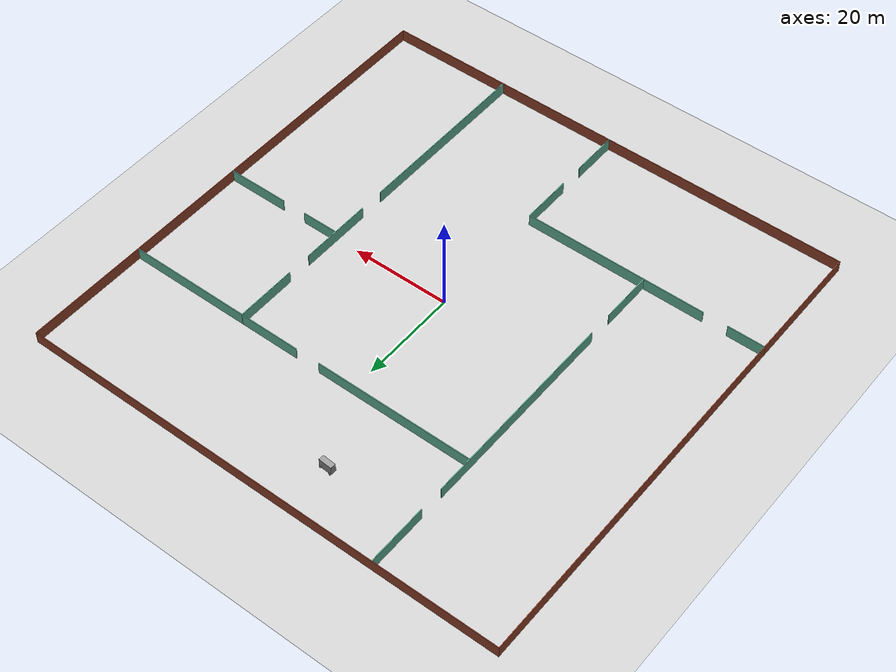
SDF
<sdf version="1.6">
 <world name="default">
  <model name="ground_plane">
   <static>1</static>
   <link name="link">
    <collision name="collision">
     <geometry><plane><normal>0 0 1</normal><size>100 100</size></plane></geometry>
     <surface><friction><ode><mu>100</mu><mu2>50</mu2></ode></friction></surface>
    </collision>
    <visual name="visual">
     <cast_shadows>0</cast_shadows>
     <geometry><plane><normal>0 0 1</normal><size>100 100</size></plane></geometry>
     <material>
      <script><uri>file://media/materials/scripts/gazebo.material</uri><name>Gazebo/Grey</name></script>
     </material>
    </visual>
   </link>
  </model>
  <model name="nuro_building">
   <pose>-0.566987 0.567026 0 0 -0 0</pose>
   <link name="Wall_0">
    <collision name="Wall_0_Collision">
     <geometry><box><size>100.15 0.15 2.5</size></box></geometry>
     <pose>0 0 1.25 0 -0 0</pose>
    </collision>
    <visual name="Wall_0_Visual">
     <pose>0 0 1.25 0 -0 0</pose>
     <geometry><box><size>100.15 0.15 2.5</size></box></geometry>
     <material>
      <script><uri>file://media/materials/scripts/gazebo.material</uri><name>Gazebo/Bricks</name></script>
      <ambient>1 1 1 1</ambient>
     </material>
     <meta><layer>0</layer></meta>
    </visual>
    <pose>-50 -2e-06 0 0 -0 1.5708</pose>
   </link>
   <link name="Wall_10">
    <pose>-25 12.5 0 0 -0 1.5708</pose>
    <visual name="Wall_10_Visual_0">
     <pose>-32.175 0 1.25 0 -0 0</pose>
     <geometry><box><size>10.8 0.15 2.5</size></box></geometry>
     <material>
      <script><uri>file://media/materials/scripts/gazebo.material</uri><name>Gazebo/Grey</name></script>
      <ambient>0.435294 0.796078 0.67451 1</ambient>
     </material>
     <meta><layer>0</layer></meta>
    </visual>
    <collision name="Wall_10_Collision_0">
     <geometry><box><size>10.8 0.15 2.5</size></box></geometry>
     <pose>-32.175 0 1.25 0 -0 0</pose>
    </collision>
    <visual name="Wall_10_Visual_1">
     <pose>-0.887501 0 1.25 0 -0 0</pose>
     <geometry><box><size>41.775 0.15 2.5</size></box></geometry>
     <material>
      <script><uri>file://media/materials/scripts/gazebo.material</uri><name>Gazebo/Grey</name></script>
      <ambient>0.435294 0.796078 0.67451 1</ambient>
     </material>
     <meta><layer>0</layer></meta>
    </visual>
    <collision name="Wall_10_Collision_1">
     <geometry><box><size>41.775 0.15 2.5</size></box></geometry>
     <pose>-0.887501 0 1.25 0 -0 0</pose>
    </collision>
    <visual name="Wall_10_Visual_2">
     <pose>31.2875 0 1.25 0 -0 0</pose>
     <geometry><box><size>12.575 0.15 2.5</size></box></geometry>
     <material>
      <script><uri>file://media/materials/scripts/gazebo.material</uri><name>Gazebo/Grey</name></script>
      <ambient>0.435294 0.796078 0.67451 1</ambient>
     </material>
     <meta><layer>0</layer></meta>
    </visual>
    <collision name="Wall_10_Collision_2">
     <geometry><box><size>12.575 0.15 2.5</size></box></geometry>
     <pose>31.2875 0 1.25 0 -0 0</pose>
    </collision>
   </link>
   <link name="Wall_12">
    <pose>12.5 25 0 0 -0 0</pose>
    <visual name="Wall_12_Visual_0">
     <pose>-21.2875 0 1.25 0 -0 0</pose>
     <geometry><box><size>32.575 0.15 2.5</size></box></geometry>
     <material>
      <script><uri>file://media/materials/scripts/gazebo.material</uri><name>Gazebo/Grey</name></script>
      <ambient>0.435294 0.796078 0.67451 1</ambient>
     </material>
     <meta><layer>0</layer></meta>
    </visual>
    <collision name="Wall_12_Collision_0">
     <geometry><box><size>32.575 0.15 2.5</size></box></geometry>
     <pose>-21.2875 0 1.25 0 -0 0</pose>
    </collision>
    <visual name="Wall_12_Visual_1">
     <pose>18.7875 0 1.25 0 -0 0</pose>
     <geometry><box><size>37.575 0.15 2.5</size></box></geometry>
     <material>
      <script><uri>file://media/materials/scripts/gazebo.material</uri><name>Gazebo/Grey</name></script>
      <ambient>0.435294 0.796078 0.67451 1</ambient>
     </material>
     <meta><layer>0</layer></meta>
    </visual>
    <collision name="Wall_12_Collision_1">
     <geometry><box><size>37.575 0.15 2.5</size></box></geometry>
     <pose>18.7875 0 1.25 0 -0 0</pose>
    </collision>
   </link>
   <link name="Wall_14">
    <pose>37.5 -2e-06 0 0 -0 0</pose>
    <visual name="Wall_14_Visual_0">
     <pose>-8.7875 0 1.25 0 -0 0</pose>
     <geometry><box><size>7.575 0.15 2.5</size></box></geometry>
     <material>
      <script><uri>file://media/materials/scripts/gazebo.material</uri><name>Gazebo/Grey</name></script>
      <ambient>0.435294 0.796078 0.67451 1</ambient>
     </material>
     <meta><layer>0</layer></meta>
    </visual>
    <collision name="Wall_14_Collision_0">
     <geometry><box><size>7.575 0.15 2.5</size></box></geometry>
     <pose>-8.7875 0 1.25 0 -0 0</pose>
    </collision>
    <visual name="Wall_14_Visual_1">
     <pose>6.2875 0 1.25 0 -0 0</pose>
     <geometry><box><size>12.575 0.15 2.5</size></box></geometry>
     <material>
      <script><uri>file://media/materials/scripts/gazebo.material</uri><name>Gazebo/Grey</name></script>
      <ambient>0.435294 0.796078 0.67451 1</ambient>
     </material>
     <meta><layer>0</layer></meta>
    </visual>
    <collision name="Wall_14_Collision_1">
     <geometry><box><size>12.575 0.15 2.5</size></box></geometry>
     <pose>6.2875 0 1.25 0 -0 0</pose>
    </collision>
   </link>
   <link name="Wall_16">
    <pose>-25 -25 0 0 -0 0</pose>
    <visual name="Wall_16_Visual_0">
     <pose>-21.2875 0 1.25 0 -0 0</pose>
     <geometry><box><size>7.575 0.15 2.5</size></box></geometry>
     <material>
      <script><uri>file://media/materials/scripts/gazebo.material</uri><name>Gazebo/Grey</name></script>
      <ambient>0.435294 0.796078 0.67451 1</ambient>
     </material>
     <meta><layer>0</layer></meta>
    </visual>
    <collision name="Wall_16_Collision_0">
     <geometry><box><size>7.575 0.15 2.5</size></box></geometry>
     <pose>-21.2875 0 1.25 0 -0 0</pose>
    </collision>
    <visual name="Wall_16_Visual_1">
     <pose>6.2875 0 1.25 0 -0 0</pose>
     <geometry><box><size>37.575 0.15 2.5</size></box></geometry>
     <material>
      <script><uri>file://media/materials/scripts/gazebo.material</uri><name>Gazebo/Grey</name></script>
      <ambient>0.435294 0.796078 0.67451 1</ambient>
     </material>
     <meta><layer>0</layer></meta>
    </visual>
    <collision name="Wall_16_Collision_1">
     <geometry><box><size>37.575 0.15 2.5</size></box></geometry>
     <pose>6.2875 0 1.25 0 -0 0</pose>
    </collision>
   </link>
   <link name="Wall_18">
    <pose>25 -12.5 0 0 -0 1.5708</pose>
    <visual name="Wall_18_Visual_0">
     <pose>-18.7875 0 1.25 0 -0 0</pose>
     <geometry><box><size>37.575 0.15 2.5</size></box></geometry>
     <material>
      <script><uri>file://media/materials/scripts/gazebo.material</uri><name>Gazebo/Grey</name></script>
      <ambient>0.435294 0.796078 0.67451 1</ambient>
     </material>
     <meta><layer>0</layer></meta>
    </visual>
    <collision name="Wall_18_Collision_0">
     <geometry><box><size>37.575 0.15 2.5</size></box></geometry>
     <pose>-18.7875 0 1.25 0 -0 0</pose>
    </collision>
    <visual name="Wall_18_Visual_1">
     <pose>12.5 0 1.25 0 -0 0</pose>
     <geometry><box><size>15 0.15 2.5</size></box></geometry>
     <material>
      <script><uri>file://media/materials/scripts/gazebo.material</uri><name>Gazebo/Grey</name></script>
      <ambient>0.435294 0.796078 0.67451 1</ambient>
     </material>
     <meta><layer>0</layer></meta>
    </visual>
    <collision name="Wall_18_Collision_1">
     <geometry><box><size>15 0.15 2.5</size></box></geometry>
     <pose>12.5 0 1.25 0 -0 0</pose>
    </collision>
    <visual name="Wall_18_Visual_2">
     <pose>31.2875 0 1.25 0 -0 0</pose>
     <geometry><box><size>12.575 0.15 2.5</size></box></geometry>
     <material>
      <script><uri>file://media/materials/scripts/gazebo.material</uri><name>Gazebo/Grey</name></script>
      <ambient>0.435294 0.796078 0.67451 1</ambient>
     </material>
     <meta><layer>0</layer></meta>
    </visual>
    <collision name="Wall_18_Collision_2">
     <geometry><box><size>12.575 0.15 2.5</size></box></geometry>
     <pose>31.2875 0 1.25 0 -0 0</pose>
    </collision>
   </link>
   <link name="Wall_2">
    <collision name="Wall_2_Collision">
     <geometry><box><size>100.15 0.15 2.5</size></box></geometry>
     <pose>0 0 1.25 0 -0 0</pose>
    </collision>
    <visual name="Wall_2_Visual">
     <pose>0 0 1.25 0 -0 0</pose>
     <geometry><box><size>100.15 0.15 2.5</size></box></geometry>
     <material>
      <script><uri>file://media/materials/scripts/gazebo.material</uri><name>Gazebo/Bricks</name></script>
      <ambient>1 1 1 1</ambient>
     </material>
     <meta><layer>0</layer></meta>
    </visual>
    <pose>1e-06 -50 0 0 -0 0</pose>
   </link>
   <link name="Wall_4">
    <collision name="Wall_4_Collision">
     <geometry><box><size>100.15 0.15 2.5</size></box></geometry>
     <pose>0 0 1.25 0 -0 0</pose>
    </collision>
    <visual name="Wall_4_Visual">
     <pose>0 0 1.25 0 -0 0</pose>
     <geometry><box><size>100.15 0.15 2.5</size></box></geometry>
     <material>
      <script><uri>file://media/materials/scripts/gazebo.material</uri><name>Gazebo/Bricks</name></script>
      <ambient>1 1 1 1</ambient>
     </material>
     <meta><layer>0</layer></meta>
    </visual>
    <pose>1e-06 50 0 0 -0 0</pose>
   </link>
   <link name="Wall_6">
    <collision name="Wall_6_Collision">
     <geometry><box><size>100.15 0.15 2.5</size></box></geometry>
     <pose>0 0 1.25 0 -0 0</pose>
    </collision>
    <visual name="Wall_6_Visual">
     <pose>0 0 1.25 0 -0 0</pose>
     <geometry><box><size>100.15 0.15 2.5</size></box></geometry>
     <material>
      <script><uri>file://media/materials/scripts/gazebo.material</uri><name>Gazebo/Bricks</name></script>
      <ambient>1 1 1 1</ambient>
     </material>
     <meta><layer>0</layer></meta>
    </visual>
    <pose>50 -2e-06 0 0 -0 1.5708</pose>
   </link>
   <link name="Wall_8">
    <pose>1e-06 -37.5 0 0 -0 1.5708</pose>
    <visual name="Wall_8_Visual_0">
     <pose>-7.70541 0 1.25 0 -0 0</pose>
     <geometry><box><size>9.73918 0.15 2.5</size></box></geometry>
     <material>
      <script><uri>file://media/materials/scripts/gazebo.material</uri><name>Gazebo/Grey</name></script>
      <ambient>0.435294 0.796078 0.67451 1</ambient>
     </material>
     <meta><layer>0</layer></meta>
    </visual>
    <collision name="Wall_8_Collision_0">
     <geometry><box><size>9.73918 0.15 2.5</size></box></geometry>
     <pose>-7.70541 0 1.25 0 -0 0</pose>
    </collision>
    <visual name="Wall_8_Visual_1">
     <pose>7.36959 0 1.25 0 -0 0</pose>
     <geometry><box><size>10.4108 0.15 2.5</size></box></geometry>
     <material>
      <script><uri>file://media/materials/scripts/gazebo.material</uri><name>Gazebo/Grey</name></script>
      <ambient>0.435294 0.796078 0.67451 1</ambient>
     </material>
     <meta><layer>0</layer></meta>
    </visual>
    <collision name="Wall_8_Collision_1">
     <geometry><box><size>10.4108 0.15 2.5</size></box></geometry>
     <pose>7.36959 0 1.25 0 -0 0</pose>
    </collision>
   </link>
   <static>1</static>
  </model>
  <model name="nuro_R2_1">
   <link name="link_0">
    <pose>-0.236667 0 1.13601 0 -0 0</pose>
    <inertial>
     <mass>1</mass>
     <inertia>
      <ixx>0.166667</ixx>
      <ixy>0</ixy>
      <ixz>0</ixz>
      <iyy>0.166667</iyy>
      <iyz>0</iyz>
      <izz>0.166667</izz>
     </inertia>
    </inertial>
    <visual name="visual">
     <geometry><box><size>2.74 1.1 1.86</size></box></geometry>
     <material>
      <lighting>1</lighting>
      <script><uri>file://media/materials/scripts/gazebo.material</uri><name>Gazebo/Grey</name></script>
      <shader type="pixel"><normal_map>__default__</normal_map></shader>
      <ambient>0.3 0.3 0.3 1</ambient>
      <diffuse>0.7 0.7 0.7 1</diffuse>
      <specular>0.01 0.01 0.01 1</specular>
      <emissive>0 0 0 1</emissive>
     </material>
    </visual>
    <collision name="collision">
     <geometry><box><size>2.74 1.1 1.86</size></box></geometry>
     <surface>
      <friction>
       <ode><mu>1</mu><mu2>1</mu2><fdir1>0 0 0</fdir1><slip1>0</slip1><slip2>0</slip2></ode>
       <torsional>
        <coefficient>1</coefficient>
        <patch_radius>0</patch_radius>
        <surface_radius>0</surface_radius>
        <use_patch_radius>1</use_patch_radius>
        <ode><slip>0</slip></ode>
       </torsional>
      </friction>
      <bounce><restitution_coefficient>0</restitution_coefficient><threshold>1e+06</threshold></bounce>
      <contact>
       <collide_without_contact>0</collide_without_contact>
       <collide_without_contact_bitmask>1</collide_without_contact_bitmask>
       <collide_bitmask>1</collide_bitmask>
       <ode>
        <soft_cfm>0</soft_cfm>
        <soft_erp>0.2</soft_erp>
        <kp>1e+13</kp>
        <kd>1</kd>
        <max_vel>0.01</max_vel>
        <min_depth>0</min_depth>
       </ode>
       <bullet>
        <split_impulse>1</split_impulse>
        <split_impulse_penetration_threshold>-0.01</split_impulse_penetration_threshold>
        <soft_cfm>0</soft_cfm>
        <soft_erp>0.2</soft_erp>
        <kp>1e+13</kp>
        <kd>1</kd>
       </bullet>
      </contact>
     </surface>
    </collision>
   </link>
   <link name="link_1">
    <pose>0.863333 -0.600026 0.306095 1.5707 -0 0</pose>
    <inertial>
     <mass>1</mass>
     <inertia><ixx>0.145833</ixx><ixy>0</ixy><ixz>0</ixz><iyy>0.145833</iyy><iyz>0</iyz><izz>0.125</izz></inertia>
    </inertial>
    <visual name="visual">
     <geometry><cylinder><radius>0.27</radius><length>0.1</length></cylinder></geometry>
     <material>
      <lighting>1</lighting>
      <script><uri>file://media/materials/scripts/gazebo.material</uri><name>Gazebo/Grey</name></script>
      <shader type="pixel"><normal_map>__default__</normal_map></shader>
      <ambient>0.3 0.3 0.3 1</ambient>
      <diffuse>0.7 0.7 0.7 1</diffuse>
      <specular>0.01 0.01 0.01 1</specular>
      <emissive>0 0 0 1</emissive>
     </material>
    </visual>
    <collision name="collision">
     <geometry><cylinder><radius>0.27</radius><length>0.1</length></cylinder></geometry>
     <surface>
      <friction>
       <ode><mu>1</mu><mu2>1</mu2><fdir1>0 0 0</fdir1><slip1>0</slip1><slip2>0</slip2></ode>
       <torsional>
        <coefficient>1</coefficient>
        <patch_radius>0</patch_radius>
        <surface_radius>0</surface_radius>
        <use_patch_radius>1</use_patch_radius>
        <ode><slip>0</slip></ode>
       </torsional>
      </friction>
      <bounce><restitution_coefficient>0</restitution_coefficient><threshold>1e+06</threshold></bounce>
      <contact>
       <collide_without_contact>0</collide_without_contact>
       <collide_without_contact_bitmask>1</collide_without_contact_bitmask>
       <collide_bitmask>1</collide_bitmask>
       <ode>
        <soft_cfm>0</soft_cfm>
        <soft_erp>0.2</soft_erp>
        <kp>1e+13</kp>
        <kd>1</kd>
        <max_vel>0.01</max_vel>
        <min_depth>0</min_depth>
       </ode>
       <bullet>
        <split_impulse>1</split_impulse>
        <split_impulse_penetration_threshold>-0.01</split_impulse_penetration_threshold>
        <soft_cfm>0</soft_cfm>
        <soft_erp>0.2</soft_erp>
        <kp>1e+13</kp>
        <kd>1</kd>
       </bullet>
      </contact>
     </surface>
    </collision>
   </link>
   <link name="link_1_clone">
    <pose>-1.33667 -0.600026 0.306095 1.5707 -0 0</pose>
    <inertial>
     <mass>1</mass>
     <inertia><ixx>0.145833</ixx><ixy>0</ixy><ixz>0</ixz><iyy>0.145833</iyy><iyz>0</iyz><izz>0.125</izz></inertia>
    </inertial>
    <visual name="visual">
     <geometry><cylinder><radius>0.27</radius><length>0.1</length></cylinder></geometry>
     <material>
      <lighting>1</lighting>
      <script><uri>file://media/materials/scripts/gazebo.material</uri><name>Gazebo/Grey</name></script>
      <shader type="pixel"><normal_map>__default__</normal_map></shader>
      <ambient>0.3 0.3 0.3 1</ambient>
      <diffuse>0.7 0.7 0.7 1</diffuse>
      <specular>0.01 0.01 0.01 1</specular>
      <emissive>0 0 0 1</emissive>
     </material>
    </visual>
    <collision name="collision">
     <geometry><cylinder><radius>0.27</radius><length>0.1</length></cylinder></geometry>
     <surface>
      <friction>
       <ode><mu>1</mu><mu2>1</mu2><fdir1>0 0 0</fdir1><slip1>0</slip1><slip2>0</slip2></ode>
       <torsional>
        <coefficient>1</coefficient>
        <patch_radius>0</patch_radius>
        <surface_radius>0</surface_radius>
        <use_patch_radius>1</use_patch_radius>
        <ode><slip>0</slip></ode>
       </torsional>
      </friction>
      <bounce><restitution_coefficient>0</restitution_coefficient><threshold>1e+06</threshold></bounce>
      <contact>
       <collide_without_contact>0</collide_without_contact>
       <collide_without_contact_bitmask>1</collide_without_contact_bitmask>
       <collide_bitmask>1</collide_bitmask>
       <ode>
        <soft_cfm>0</soft_cfm>
        <soft_erp>0.2</soft_erp>
        <kp>1e+13</kp>
        <kd>1</kd>
        <max_vel>0.01</max_vel>
        <min_depth>0</min_depth>
       </ode>
       <bullet>
        <split_impulse>1</split_impulse>
        <split_impulse_penetration_threshold>-0.01</split_impulse_penetration_threshold>
        <soft_cfm>0</soft_cfm>
        <soft_erp>0.2</soft_erp>
        <kp>1e+13</kp>
        <kd>1</kd>
       </bullet>
      </contact>
     </surface>
    </collision>
   </link>
   <link name="link_1_clone_0">
    <pose>0.863333 0.600026 0.306095 1.5707 -0 0</pose>
    <inertial>
     <mass>1</mass>
     <inertia><ixx>0.145833</ixx><ixy>0</ixy><ixz>0</ixz><iyy>0.145833</iyy><iyz>0</iyz><izz>0.125</izz></inertia>
    </inertial>
    <visual name="visual">
     <geometry><cylinder><radius>0.27</radius><length>0.1</length></cylinder></geometry>
     <material>
      <lighting>1</lighting>
      <script><uri>file://media/materials/scripts/gazebo.material</uri><name>Gazebo/Grey</name></script>
      <shader type="pixel"><normal_map>__default__</normal_map></shader>
      <ambient>0.3 0.3 0.3 1</ambient>
      <diffuse>0.7 0.7 0.7 1</diffuse>
      <specular>0.01 0.01 0.01 1</specular>
      <emissive>0 0 0 1</emissive>
     </material>
    </visual>
    <collision name="collision">
     <geometry><cylinder><radius>0.27</radius><length>0.1</length></cylinder></geometry>
     <surface>
      <friction>
       <ode><mu>1</mu><mu2>1</mu2><fdir1>0 0 0</fdir1><slip1>0</slip1><slip2>0</slip2></ode>
       <torsional>
        <coefficient>1</coefficient>
        <patch_radius>0</patch_radius>
        <surface_radius>0</surface_radius>
        <use_patch_radius>1</use_patch_radius>
        <ode><slip>0</slip></ode>
       </torsional>
      </friction>
      <bounce><restitution_coefficient>0</restitution_coefficient><threshold>1e+06</threshold></bounce>
      <contact>
       <collide_without_contact>0</collide_without_contact>
       <collide_without_contact_bitmask>1</collide_without_contact_bitmask>
       <collide_bitmask>1</collide_bitmask>
       <ode>
        <soft_cfm>0</soft_cfm>
        <soft_erp>0.2</soft_erp>
        <kp>1e+13</kp>
        <kd>1</kd>
        <max_vel>0.01</max_vel>
        <min_depth>0</min_depth>
       </ode>
       <bullet>
        <split_impulse>1</split_impulse>
        <split_impulse_penetration_threshold>-0.01</split_impulse_penetration_threshold>
        <soft_cfm>0</soft_cfm>
        <soft_erp>0.2</soft_erp>
        <kp>1e+13</kp>
        <kd>1</kd>
       </bullet>
      </contact>
     </surface>
    </collision>
   </link>
   <link name="link_1_clone_1">
    <pose>-1.33667 0.600026 0.306095 1.5707 -0 0</pose>
    <inertial>
     <mass>1</mass>
     <inertia><ixx>0.145833</ixx><ixy>0</ixy><ixz>0</ixz><iyy>0.145833</iyy><iyz>0</iyz><izz>0.125</izz></inertia>
    </inertial>
    <visual name="visual">
     <geometry><cylinder><radius>0.27</radius><length>0.1</length></cylinder></geometry>
     <material>
      <lighting>1</lighting>
      <script><uri>file://media/materials/scripts/gazebo.material</uri><name>Gazebo/Grey</name></script>
      <shader type="pixel"><normal_map>__default__</normal_map></shader>
      <ambient>0.3 0.3 0.3 1</ambient>
      <diffuse>0.7 0.7 0.7 1</diffuse>
      <specular>0.01 0.01 0.01 1</specular>
      <emissive>0 0 0 1</emissive>
     </material>
    </visual>
    <collision name="collision">
     <geometry><cylinder><radius>0.27</radius><length>0.1</length></cylinder></geometry>
     <surface>
      <friction>
       <ode><mu>1</mu><mu2>1</mu2><fdir1>0 0 0</fdir1><slip1>0</slip1><slip2>0</slip2></ode>
       <torsional>
        <coefficient>1</coefficient>
        <patch_radius>0</patch_radius>
        <surface_radius>0</surface_radius>
        <use_patch_radius>1</use_patch_radius>
        <ode><slip>0</slip></ode>
       </torsional>
      </friction>
      <bounce><restitution_coefficient>0</restitution_coefficient><threshold>1e+06</threshold></bounce>
      <contact>
       <collide_without_contact>0</collide_without_contact>
       <collide_without_contact_bitmask>1</collide_without_contact_bitmask>
       <collide_bitmask>1</collide_bitmask>
       <ode>
        <soft_cfm>0</soft_cfm>
        <soft_erp>0.2</soft_erp>
        <kp>1e+13</kp>
        <kd>1</kd>
        <max_vel>0.01</max_vel>
        <min_depth>0</min_depth>
       </ode>
       <bullet>
        <split_impulse>1</split_impulse>
        <split_impulse_penetration_threshold>-0.01</split_impulse_penetration_threshold>
        <soft_cfm>0</soft_cfm>
        <soft_erp>0.2</soft_erp>
        <kp>1e+13</kp>
        <kd>1</kd>
       </bullet>
      </contact>
     </surface>
    </collision>
   </link>
   <link name="link_3">
    <pose>1.18333 0 0.256011 0 -0 0</pose>
    <inertial>
     <mass>1</mass>
     <inertia>
      <ixx>0.166667</ixx>
      <ixy>0</ixy>
      <ixz>0</ixz>
      <iyy>0.166667</iyy>
      <iyz>0</iyz>
      <izz>0.166667</izz>
     </inertia>
    </inertial>
    <visual name="visual">
     <geometry><box><size>0.1 0.3 0.1</size></box></geometry>
     <material>
      <lighting>1</lighting>
      <script><uri>file://media/materials/scripts/gazebo.material</uri><name>Gazebo/Grey</name></script>
      <shader type="pixel"><normal_map>__default__</normal_map></shader>
      <ambient>0.3 0.3 0.3 1</ambient>
      <diffuse>0.7 0.7 0.7 1</diffuse>
      <specular>0.01 0.01 0.01 1</specular>
      <emissive>0 0 0 1</emissive>
     </material>
    </visual>
    <collision name="collision">
     <geometry><box><size>0.1 0.3 0.1</size></box></geometry>
     <surface>
      <friction>
       <ode><mu>1</mu><mu2>1</mu2><fdir1>0 0 0</fdir1><slip1>0</slip1><slip2>0</slip2></ode>
       <torsional>
        <coefficient>1</coefficient>
        <patch_radius>0</patch_radius>
        <surface_radius>0</surface_radius>
        <use_patch_radius>1</use_patch_radius>
        <ode><slip>0</slip></ode>
       </torsional>
      </friction>
      <bounce><restitution_coefficient>0</restitution_coefficient><threshold>1e+06</threshold></bounce>
      <contact>
       <collide_without_contact>0</collide_without_contact>
       <collide_without_contact_bitmask>1</collide_without_contact_bitmask>
       <collide_bitmask>1</collide_bitmask>
       <ode>
        <soft_cfm>0</soft_cfm>
        <soft_erp>0.2</soft_erp>
        <kp>1e+13</kp>
        <kd>1</kd>
        <max_vel>0.01</max_vel>
        <min_depth>0</min_depth>
       </ode>
       <bullet>
        <split_impulse>1</split_impulse>
        <split_impulse_penetration_threshold>-0.01</split_impulse_penetration_threshold>
        <soft_cfm>0</soft_cfm>
        <soft_erp>0.2</soft_erp>
        <kp>1e+13</kp>
        <kd>1</kd>
       </bullet>
      </contact>
     </surface>
    </collision>
   </link>
   <joint name="link_0_JOINT_0" type="revolute">
    <parent>link_0</parent>
    <child>link_1</child>
    <pose>0 0 0 -0.01 0 0</pose>
    <axis>
     <xyz>0 0 1</xyz>
     <use_parent_model_frame>0</use_parent_model_frame>
     <limit>
      <lower>-1.79769e+308</lower>
      <upper>1.79769e+308</upper>
      <effort>-1</effort>
      <velocity>-1</velocity>
     </limit>
     <dynamics>
      <spring_reference>0</spring_reference>
      <spring_stiffness>0</spring_stiffness>
      <damping>0</damping>
     </dynamics>
    </axis>
    <physics>
     <ode><limit><cfm>0</cfm><erp>0.2</erp></limit><suspension><cfm>0</cfm><erp>0.2</erp></suspension></ode>
    </physics>
   </joint>
   <joint name="link_0_JOINT_1" type="revolute">
    <parent>link_0</parent>
    <child>link_1_clone</child>
    <axis>
     <xyz>0 0 1</xyz>
     <use_parent_model_frame>0</use_parent_model_frame>
     <limit>
      <lower>-1.79769e+308</lower>
      <upper>1.79769e+308</upper>
      <effort>-1</effort>
      <velocity>-1</velocity>
     </limit>
     <dynamics>
      <spring_reference>0</spring_reference>
      <spring_stiffness>0</spring_stiffness>
      <damping>0</damping>
     </dynamics>
    </axis>
    <physics>
     <ode><limit><cfm>0</cfm><erp>0.2</erp></limit><suspension><cfm>0</cfm><erp>0.2</erp></suspension></ode>
    </physics>
   </joint>
   <joint name="link_0_JOINT_2" type="revolute">
    <parent>link_0</parent>
    <child>link_1_clone_0</child>
    <axis>
     <xyz>0 0 1</xyz>
     <use_parent_model_frame>0</use_parent_model_frame>
     <limit>
      <lower>-1.79769e+308</lower>
      <upper>1.79769e+308</upper>
      <effort>-1</effort>
      <velocity>-1</velocity>
     </limit>
     <dynamics>
      <spring_reference>0</spring_reference>
      <spring_stiffness>0</spring_stiffness>
      <damping>0</damping>
     </dynamics>
    </axis>
    <physics>
     <ode><limit><cfm>0</cfm><erp>0.2</erp></limit><suspension><cfm>0</cfm><erp>0.2</erp></suspension></ode>
    </physics>
   </joint>
   <joint name="link_0_JOINT_3" type="revolute">
    <parent>link_0</parent>
    <child>link_1_clone_1</child>
    <axis>
     <xyz>0 0 1</xyz>
     <use_parent_model_frame>0</use_parent_model_frame>
     <limit>
      <lower>-1.79769e+308</lower>
      <upper>1.79769e+308</upper>
      <effort>-1</effort>
      <velocity>-1</velocity>
     </limit>
     <dynamics>
      <spring_reference>0</spring_reference>
      <spring_stiffness>0</spring_stiffness>
      <damping>0</damping>
     </dynamics>
    </axis>
    <physics>
     <ode><limit><cfm>0</cfm><erp>0.2</erp></limit><suspension><cfm>0</cfm><erp>0.2</erp></suspension></ode>
    </physics>
   </joint>
   <joint name="link_0_JOINT_5" type="fixed">
    <parent>link_0</parent>
    <child>link_3</child>
    <physics>
     <ode><limit><cfm>0</cfm><erp>0.2</erp></limit><suspension><cfm>0</cfm><erp>0.2</erp></suspension></ode>
    </physics>
   </joint>
   <static>0</static>
   <pose>-7.18237 40.0812 -0.036096 4e-06 4e-06 -0.072217</pose>
  </model>
 </world>
</sdf>
